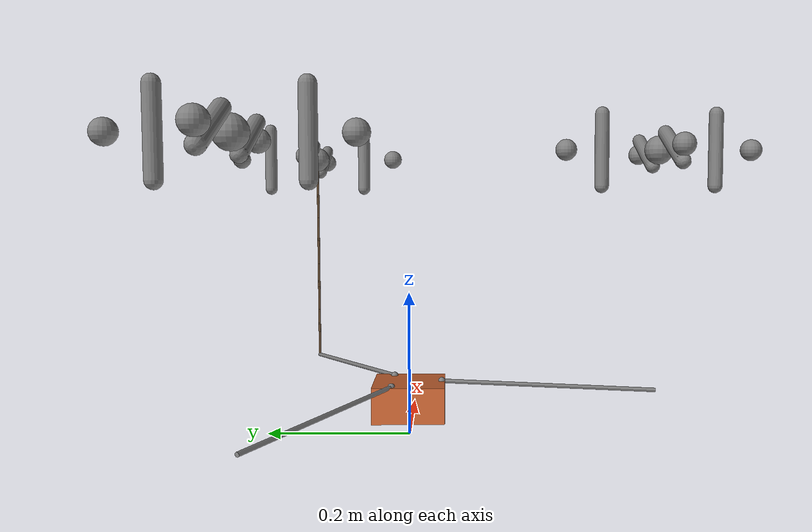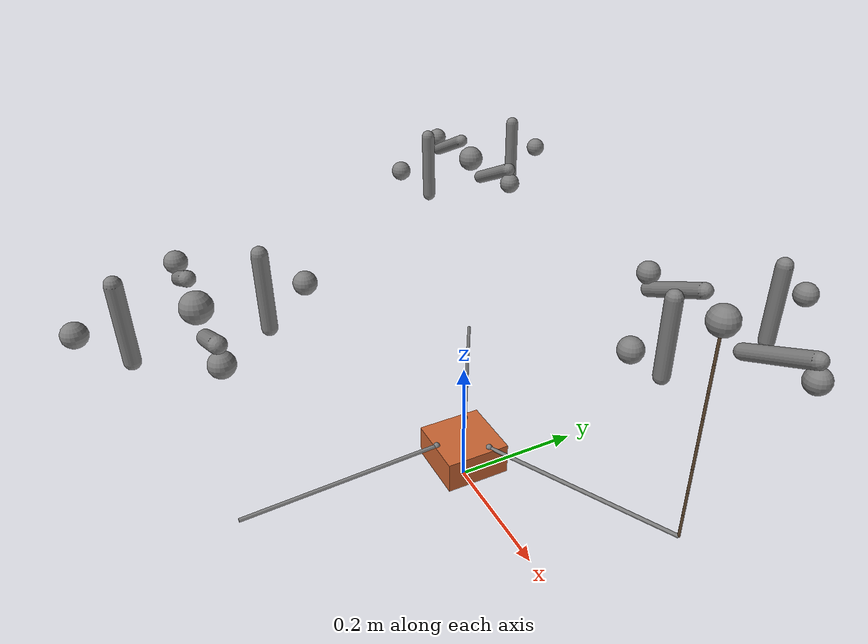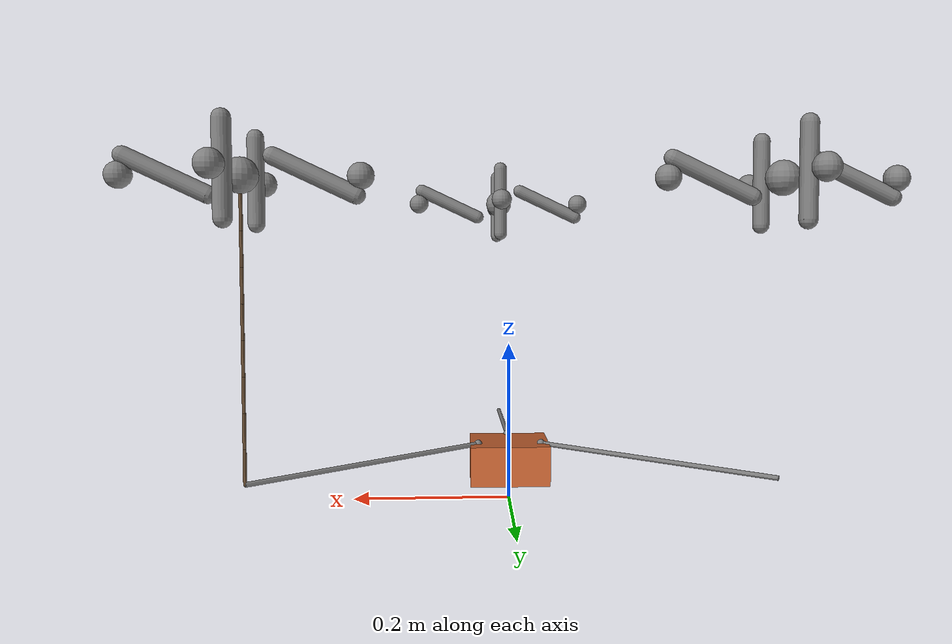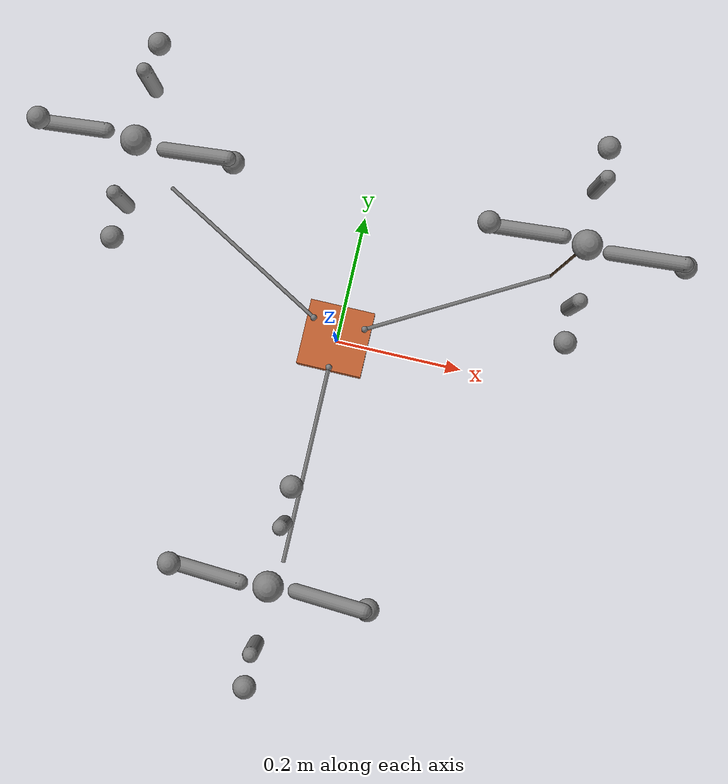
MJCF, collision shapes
<mujoco model="3cf_carry_box_segmented">

  <compiler inertiafromgeom="false" meshdir="assets" autolimits="true"/>

  <option timestep="0.005" iterations="5" ls_iterations="8" integrator="implicitfast">
    <flag eulerdamp="disable"/>
  </option>

  <default>
    <default class="cf2">
      <!-- Visual geoms: no collision -->
      <default class="visual">
        <geom group="2" type="mesh" contype="0" conaffinity="0"/>
      </default>
      <!-- Collision geoms for drones -->
      <default class="collision">
        <geom group="3" contype="1" conaffinity="1"/>
      </default>
      <!-- Box collision -->
      <default class="box_collision">
        <geom group="4" contype="2" conaffinity="3"/>
      </default>
      <!-- Rope segments -->
      <default class="rope_segment">
        <geom type="capsule" size="0.002 0.02" rgba="0.4 0.3 0.2 1" contype="0" conaffinity="0"/>
        <joint type="ball" damping="0.1" stiffness="50"/>
        <inertial mass="0.001" diaginertia="1e-8 1e-8 1e-8"/>
      </default>
      <site group="5"/>
    </default>
  </default>

  <asset>
    <!-- Materials same as original -->
    <material name="propeller_plastic"    rgba="0.792 0.820 0.933 1"/>
    <material name="medium_gloss_plastic" rgba="0.109 0.184 0.000 1"/>
    <material name="polished_gold"        rgba="0.969 0.878 0.600 1"/>
    <material name="polished_plastic"     rgba="0.631 0.659 0.678 1"/>
    <material name="burnished_chrome"     rgba="0.898 0.898 0.898 1"/>
    <material name="body_frame_plastic"   rgba="0.102 0.102 0.102 1"/>
    <material name="white"                rgba="1     1     1     1"/>
    <material name="box_material"         rgba="0.8 0.4 0.2 1"/>

    <mesh file="cf2_0.obj"/>
    <mesh file="cf2_1.obj"/>
    <mesh file="cf2_2.obj"/>
    <mesh file="cf2_3.obj"/>
    <mesh file="cf2_4.obj"/>
    <mesh file="cf2_5.obj"/>
    <mesh file="cf2_6.obj"/>
  </asset>

  <worldbody>
    <!-- Central box -->
    <body name="payload_box" pos="0 0 0.05">
      <freejoint/>
      <inertial pos="0 0 0" mass="0.05" diaginertia="4.17e-4 4.17e-4 8.33e-4"/>
      <geom name="box_visual" type="box" size="0.05 0.05 0.025"
            material="box_material" contype="0" conaffinity="0"/>
      <geom name="box_collision" type="box" size="0.05 0.05 0.025"
            class="box_collision"/>
      <site name="attach_1" pos="0.04  0.023 0.025"/>
      <site name="attach_2" pos="-0.04 0.023 0.025"/>
      <site name="attach_3" pos="0    -0.046 0.025"/>
    </body>

    <!-- Crazyflie #1 with detailed rope -->
    <body name="cf2_1" pos="0.3 0.17 0.4" childclass="cf2">
      <freejoint/>
      <inertial pos="0 0 0" mass="0.027" diaginertia="2.3951e-5 2.3951e-5 3.2347e-5"/>
      <!-- Visual meshes same as original -->
      <geom mesh="cf2_0" material="propeller_plastic"    class="visual"/>
      <geom mesh="cf2_1" material="medium_gloss_plastic" class="visual"/>
      <geom mesh="cf2_2" material="polished_gold"        class="visual"/>
      <geom mesh="cf2_3" material="polished_plastic"     class="visual"/>
      <geom mesh="cf2_4" material="burnished_chrome"     class="visual"/>
      <geom mesh="cf2_5" material="body_frame_plastic"   class="visual"/>
      <geom mesh="cf2_6" material="white"                class="visual"/>
      <!-- Collision geoms same as original -->
      <geom type="sphere" size="0.02" pos="0 0 0" class="collision"/>
      <geom type="capsule" size="0.01 0.05" pos="0.08  0    0" quat="0 1 0 1.5708" class="collision"/>
      <geom type="capsule" size="0.01 0.05" pos="-0.08 0    0" quat="0 1 0 1.5708" class="collision"/>
      <geom type="capsule" size="0.01 0.05" pos="0    0.08  0" quat="1 0 0 1.5708" class="collision"/>
      <geom type="capsule" size="0.01 0.05" pos="0   -0.08  0" quat="1 0 0 1.5708" class="collision"/>
      <geom type="sphere" size="0.015" pos="0.13  0    0" class="collision"/>
      <geom type="sphere" size="0.015" pos="-0.13 0    0" class="collision"/>
      <geom type="sphere" size="0.015" pos="0    0.13  0" class="collision"/>
      <geom type="sphere" size="0.015" pos="0   -0.13  0" class="collision"/>

      <site name="imu1"/>
      <site name="actuation1"/>

      <!-- Enhanced rope with more segments -->
      <body name="rope1_seg1" pos="0 0 -0.04" class="rope_segment">
        <geom class="rope_segment"/>
        <body name="rope1_seg2" pos="0 0 -0.04" class="rope_segment">
          <geom class="rope_segment"/>
          <body name="rope1_seg3" pos="0 0 -0.04" class="rope_segment">
            <geom class="rope_segment"/>
            <body name="rope1_seg4" pos="0 0 -0.04" class="rope_segment">
              <geom class="rope_segment"/>
              <body name="rope1_seg5" pos="0 0 -0.04" class="rope_segment">
                <geom class="rope_segment"/>
                <body name="rope1_seg6" pos="0 0 -0.04" class="rope_segment">
                  <geom class="rope_segment"/>
                  <body name="rope1_seg7" pos="0 0 -0.04" class="rope_segment">
                    <geom class="rope_segment"/>
                    <body name="rope1_seg8" pos="0 0 -0.04" class="rope_segment">
                      <geom class="rope_segment"/>
                      <site name="rope1_end" pos="0 0 -0.02"/>
                    </body>
                  </body>
                </body>
              </body>
            </body>
          </body>
        </body>
      </body>
    </body>

    <!-- Similar structure for CF2 and CF3 with ropes -->
    <body name="cf2_2" pos="-0.3 0.17 0.4" childclass="cf2">
      <freejoint/>
      <inertial pos="0 0 0" mass="0.027" diaginertia="2.3951e-5 2.3951e-5 3.2347e-5"/>
      <!-- Visual and collision geoms same pattern -->
      <geom mesh="cf2_0" material="propeller_plastic"    class="visual"/>
      <geom mesh="cf2_1" material="medium_gloss_plastic" class="visual"/>
      <geom mesh="cf2_2" material="polished_gold"        class="visual"/>
      <geom mesh="cf2_3" material="polished_plastic"     class="visual"/>
      <geom mesh="cf2_4" material="burnished_chrome"     class="visual"/>
      <geom mesh="cf2_5" material="body_frame_plastic"   class="visual"/>
      <geom mesh="cf2_6" material="white"                class="visual"/>
      <geom type="sphere" size="0.02" pos="0 0 0" class="collision"/>
      <geom type="capsule" size="0.01 0.05" pos="0.08  0    0" quat="0 1 0 1.5708" class="collision"/>
      <geom type="capsule" size="0.01 0.05" pos="-0.08 0    0" quat="0 1 0 1.5708" class="collision"/>
      <geom type="capsule" size="0.01 0.05" pos="0    0.08  0" quat="1 0 0 1.5708" class="collision"/>
      <geom type="capsule" size="0.01 0.05" pos="0   -0.08  0" quat="1 0 0 1.5708" class="collision"/>
      <geom type="sphere" size="0.015" pos="0.13  0    0" class="collision"/>
      <geom type="sphere" size="0.015" pos="-0.13 0    0" class="collision"/>
      <geom type="sphere" size="0.015" pos="0    0.13  0" class="collision"/>
      <geom type="sphere" size="0.015" pos="0   -0.13  0" class="collision"/>
      <site name="imu2"/>
      <site name="actuation2"/>
      <site name="rope2_end" pos="0 0 -0.34"/>
    </body>

    <body name="cf2_3" pos="0 -0.35 0.4" childclass="cf2">
      <freejoint/>
      <inertial pos="0 0 0" mass="0.027" diaginertia="2.3951e-5 2.3951e-5 3.2347e-5"/>
      <!-- Visual and collision geoms same pattern -->
      <geom mesh="cf2_0" material="propeller_plastic"    class="visual"/>
      <geom mesh="cf2_1" material="medium_gloss_plastic" class="visual"/>
      <geom mesh="cf2_2" material="polished_gold"        class="visual"/>
      <geom mesh="cf2_3" material="polished_plastic"     class="visual"/>
      <geom mesh="cf2_4" material="burnished_chrome"     class="visual"/>
      <geom mesh="cf2_5" material="body_frame_plastic"   class="visual"/>
      <geom mesh="cf2_6" material="white"                class="visual"/>
      <geom type="sphere" size="0.02" pos="0 0 0" class="collision"/>
      <geom type="capsule" size="0.01 0.05" pos="0.08  0    0" quat="0 1 0 1.5708" class="collision"/>
      <geom type="capsule" size="0.01 0.05" pos="-0.08 0    0" quat="0 1 0 1.5708" class="collision"/>
      <geom type="capsule" size="0.01 0.05" pos="0    0.08  0" quat="1 0 0 1.5708" class="collision"/>
      <geom type="capsule" size="0.01 0.05" pos="0   -0.08  0" quat="1 0 0 1.5708" class="collision"/>
      <geom type="sphere" size="0.015" pos="0.13  0    0" class="collision"/>
      <geom type="sphere" size="0.015" pos="-0.13 0    0" class="collision"/>
      <geom type="sphere" size="0.015" pos="0    0.13  0" class="collision"/>
      <geom type="sphere" size="0.015" pos="0   -0.13  0" class="collision"/>
      <site name="imu3"/>
      <site name="actuation3"/>
      <site name="rope3_end" pos="0 0 -0.34"/>
    </body>
  </worldbody>

  <!-- Simplified tendon connections for the segmented version -->
  <tendon>
    <spatial name="cable_1" damping="1" stiffness="50" range="0 0.4">
      <site site="rope1_end"/>
      <site site="attach_1"/>
    </spatial>
    <spatial name="cable_2" damping="1" stiffness="50" range="0 0.4">
      <site site="rope2_end"/>
      <site site="attach_2"/>
    </spatial>
    <spatial name="cable_3" damping="1" stiffness="50" range="0 0.4">
      <site site="rope3_end"/>
      <site site="attach_3"/>
    </spatial>
  </tendon>

  <!-- Actuators and sensors same as original -->
  <actuator>
    <motor class="cf2" name="cf1_thrust"   ctrlrange="0 0.35"   gear="0 0 1  0  0    0"   site="actuation1"/>
    <motor class="cf2" name="cf1_x_moment" ctrlrange="-1 1"     gear="0 0 0  -0.00001  0  0" site="actuation1"/>
    <motor class="cf2" name="cf1_y_moment" ctrlrange="-1 1"     gear="0 0 0  0  -0.00001  0" site="actuation1"/>
    <motor class="cf2" name="cf1_z_moment" ctrlrange="-1 1"     gear="0 0 0  0   0  -0.00001" site="actuation1"/>
    <motor class="cf2" name="cf2_thrust"   ctrlrange="0 0.35"   gear="0 0 1  0  0    0"   site="actuation2"/>
    <motor class="cf2" name="cf2_x_moment" ctrlrange="-1 1"     gear="0 0 0  -0.00001  0  0" site="actuation2"/>
    <motor class="cf2" name="cf2_y_moment" ctrlrange="-1 1"     gear="0 0 0  0  -0.00001  0" site="actuation2"/>
    <motor class="cf2" name="cf2_z_moment" ctrlrange="-1 1"     gear="0 0 0  0   0  -0.00001" site="actuation2"/>
    <motor class="cf2" name="cf3_thrust"   ctrlrange="0 0.35"   gear="0 0 1  0  0    0"   site="actuation3"/>
    <motor class="cf2" name="cf3_x_moment" ctrlrange="-1 1"     gear="0 0 0  -0.00001  0  0" site="actuation3"/>
    <motor class="cf2" name="cf3_y_moment" ctrlrange="-1 1"     gear="0 0 0  0  -0.00001  0" site="actuation3"/>
    <motor class="cf2" name="cf3_z_moment" ctrlrange="-1 1"     gear="0 0 0  0   0  -0.00001" site="actuation3"/>
  </actuator>

  <sensor>
    <gyro          name="cf1_gyro"    site="imu1"/>
    <accelerometer name="cf1_linacc"  site="imu1"/>
    <framequat     name="cf1_quat"    objtype="site" objname="imu1"/>
    <gyro          name="cf2_gyro"    site="imu2"/>
    <accelerometer name="cf2_linacc"  site="imu2"/>
    <framequat     name="cf2_quat"    objtype="site" objname="imu2"/>
    <gyro          name="cf3_gyro"    site="imu3"/>
    <accelerometer name="cf3_linacc"  site="imu3"/>
    <framequat     name="cf3_quat"    objtype="site" objname="imu3"/>
    <framequat     name="box_quat"    objtype="body" objname="payload_box"/>
    <framepos      name="box_pos"     objtype="body" objname="payload_box"/>
  </sensor>
</mujoco>
